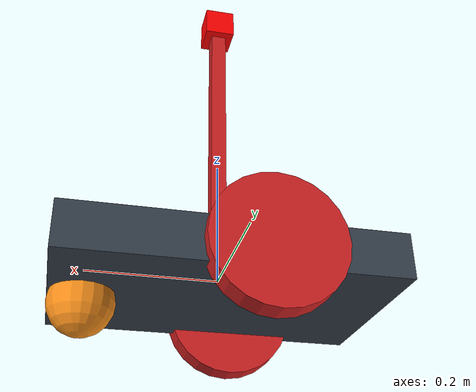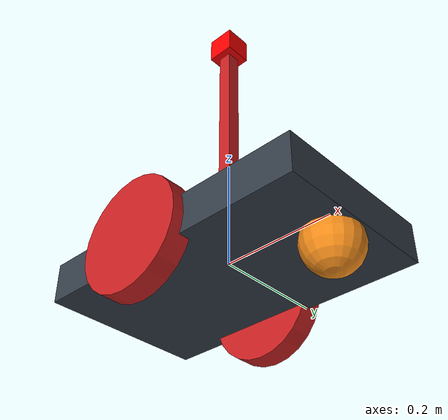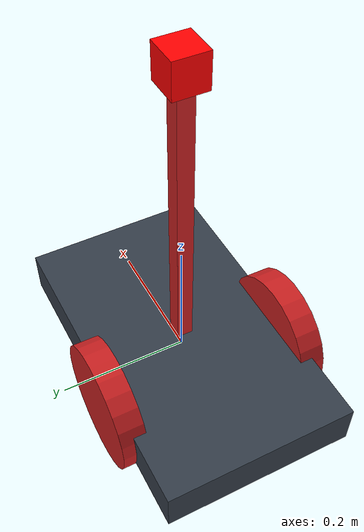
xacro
<?xml version="1.0"?>
<robot xmlns:xacro="http://www.ros.org/wiki/xacro" name="robot4_xacro">
    <xacro:include filename="$(find robot_urdf)/urdf/robot4.gazebo" />

    <xacro:property name="length_wheel" value="0.04" />
    <xacro:property name="radius_wheel" value="0.1" />

    <xacro:macro name="default_inertial" params="mass">
        <inertial>
            <mass value="${mass}" />
            <origin rpy="0 1.5707 1.5707" xyz="0 0 0" />
            <inertia ixx="0.000526666666667" ixy="0" ixz="0" iyy="0.000526666666667" iyz="0"
                izz="0.001" />
        </inertial>
    </xacro:macro>

    <xacro:macro name="wheel_geometry">
        <geometry>
            <cylinder length="${length_wheel}" radius="${radius_wheel}" />
        </geometry>
    </xacro:macro>

    <material name="black">
        <color rgba="0.0 0.0 0.0 1.0" />
    </material>
    <material name="blue">
        <color rgba="0.203125 0.23828125 0.28515625 1.0" />
    </material>
    <material name="green">
        <color rgba="0.0 0.8 0.0 1.0" />
    </material>
    <material name="grey">
        <color rgba="0.2 0.2 0.2 1.0" />
    </material>
    <material name="orange">
        <color rgba="1.0 0.423529411765 0.0392156862745 1.0" />
    </material>
    <material name="brown">
        <color rgba="0.870588235294 0.811764705882 0.764705882353 1.0" />
    </material>
    <material name="red">
        <color rgba="0.80078125 0.12890625 0.1328125 1.0" />
    </material>
    <material name="white">
        <color rgba="1.0 1.0 1.0 1.0" />
    </material>

    <link name="link_chassis">
        <!-- pose and inertial -->
        <pose>0 0 0.1 0 0 0</pose>
        <inertial>
            <mass value="5" />
            <origin rpy="0 0 0" xyz="0 0 0.1" />
            <inertia ixx="0.0395416666667" ixy="0" ixz="0" iyy="0.106208333333" iyz="0"
                izz="0.106208333333" />
        </inertial>
        <!-- body -->
        <collision name="collision_chassis">
            <geometry>
                <box size="0.5 0.3 0.07" />
            </geometry>
        </collision>
        <visual>
            <origin rpy="0 0 0" xyz="0 0 0" />
            <geometry>
                <box size="0.5 0.3 0.07" />
            </geometry>
            <material name="blue" />
        </visual>
        <!-- caster front -->
        <collision name="caster_front_collision">
            <origin rpy=" 0 0 0" xyz="0.35 0 -0.05" />
            <geometry>
                <sphere radius="0.05" />
            </geometry>
        </collision>
        <visual name="caster_front_visual">
            <origin rpy=" 0 0 0" xyz="0.2 0 -0.05" />
            <geometry>
                <sphere radius="0.05" />
            </geometry>
        </visual>
    </link>

    <link name="link_right_wheel">
        <xacro:default_inertial mass="0.2" />
        <collision name="link_right_wheel_collision">
            <origin rpy="0 1.5707 1.5707" xyz="0 0 0" />
            <xacro:wheel_geometry />
        </collision>
        <visual name="link_right_wheel_visual">
            <origin rpy="0 1.5707 1.5707" xyz="0 0 0" />
            <xacro:wheel_geometry />
            <material name="red" />
        </visual>
    </link>

    <link name="link_left_wheel">
        <xacro:default_inertial mass="0.2" />
        <collision name="link_left_wheel_collision">
            <origin rpy="0 1.5707 1.5707" xyz="0 0 0" />
            <xacro:wheel_geometry />
        </collision>
        <visual name="link_left_wheel_visual">
            <origin rpy="0 1.5707 1.5707" xyz="0 0 0" />
            <xacro:wheel_geometry />
            <material name="red" />
        </visual>
    </link>

    <joint name="joint_right_wheel" type="continuous">
        <origin rpy="0 0 0" xyz="-0.05 0.15 0" />
        <child link="link_right_wheel" />
        <parent link="link_chassis" />
        <axis rpy="0 0 0" xyz="0 1 0" />
        <limit effort="10000" velocity="1000" />
        <joint_properties damping="1.0" friction="1.0" />
    </joint>

    <joint name="joint_left_wheel" type="continuous">
        <origin rpy="0 0 0" xyz="-0.05 -0.15 0" />
        <child link="link_left_wheel" />
        <parent link="link_chassis" />
        <axis rpy="0 0 0" xyz="0 1 0" />
        <limit effort="10000" velocity="1000" />
        <joint_properties damping="1.0" friction="1.0" />
    </joint>

    <link name="arm_camera_link">
        <collision>
            <origin xyz="0 0 0.0" rpy="0 0 0" />
            <geometry>
                <box size="0.025 0.025 0.5" />
            </geometry>
        </collision>
        <visual>
            <origin xyz="0 0 0" rpy="0 0 0" />
            <geometry>
                <box size="0.025 0.025 0.5" />
            </geometry>
            <material name="red" />
        </visual>
        <inertial>
            <mass value="1e-5" />
            <origin xyz="0 0 0" rpy="0 0 0" />
            <inertia ixx="1e-6" ixy="0" ixz="0" iyy="1e-6" iyz="0" izz="1e-6" />
        </inertial>
    </link>

    <joint name="arm_camera_joint" type="continuous">
        <axis xyz="0 0 1" />
        <origin xyz="0.0 0.0 0.25" rpy="0 0 0" />
        <parent link="link_chassis" />
        <child link="arm_camera_link" />
    </joint>

    <link name="camera_link">
        <collision>
            <origin xyz="0 0 0" rpy="0 0 0" />
            <geometry>
                <box size="0.05 0.05 0.05" />
            </geometry>
        </collision>
        <visual>
            <origin xyz="0 0 0" rpy="0 0 0" />
            <geometry>
                <box size="0.05 0.05 0.05" />
            </geometry>
            <material name="red">
                <color rgba="1 0 0 1" />
            </material>
        </visual>
        <inertial>
            <mass value="1e-5" />
            <origin xyz="0 0 0" rpy="0 0 0" />
            <inertia ixx="1e-6" ixy="0" ixz="0" iyy="1e-6" iyz="0" izz="1e-6" />
        </inertial>
    </link>

    <joint name="camera_joint" type="fixed">
        <axis xyz="0 1 0" />
        <origin xyz="0.0 0 0.25" rpy="0 0 0" />
        <parent link="arm_camera_link" />
        <child link="camera_link" />
    </joint>

    <ros2_control name="GazeboSystem" type="system">
        <hardware>
            <plugin>gazebo_ros2_control/GazeboSystem</plugin>
        </hardware>
        <joint name="arm_camera_joint">
            <command_interface name="position">
                <param name="min">-2</param>
                <param name="max">2</param>
            </command_interface>
            <state_interface name="position">
                <param name="initial_value">0.0</param>
            </state_interface>
            <state_interface name="velocity" />
            <state_interface name="effort" />
        </joint>
    </ros2_control>

</robot>
